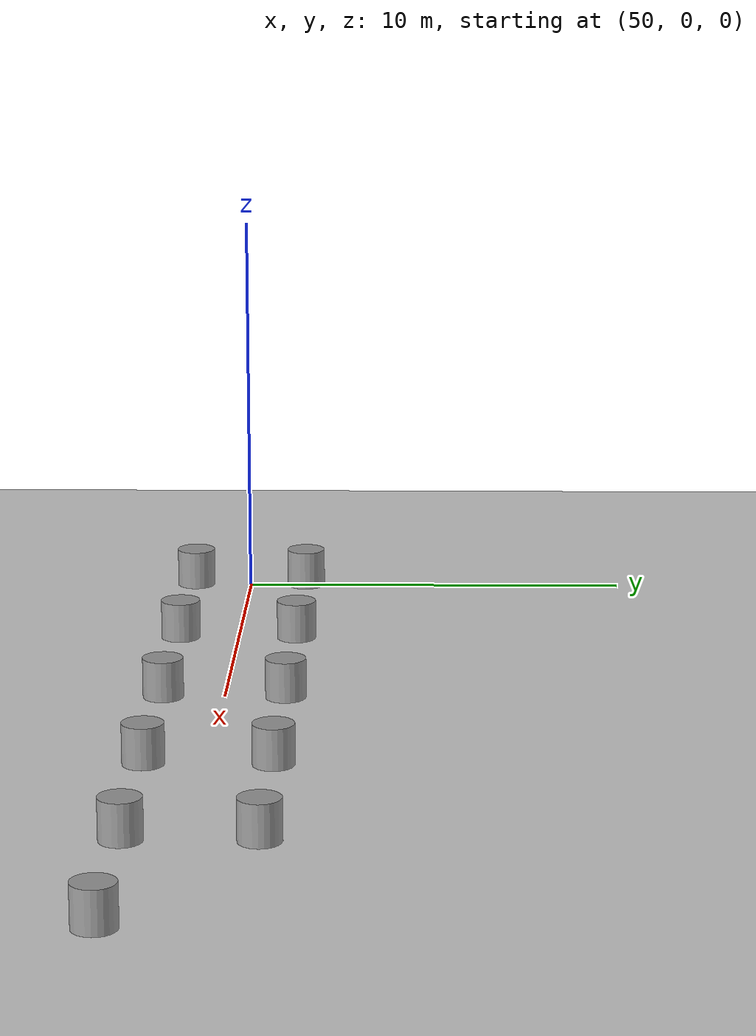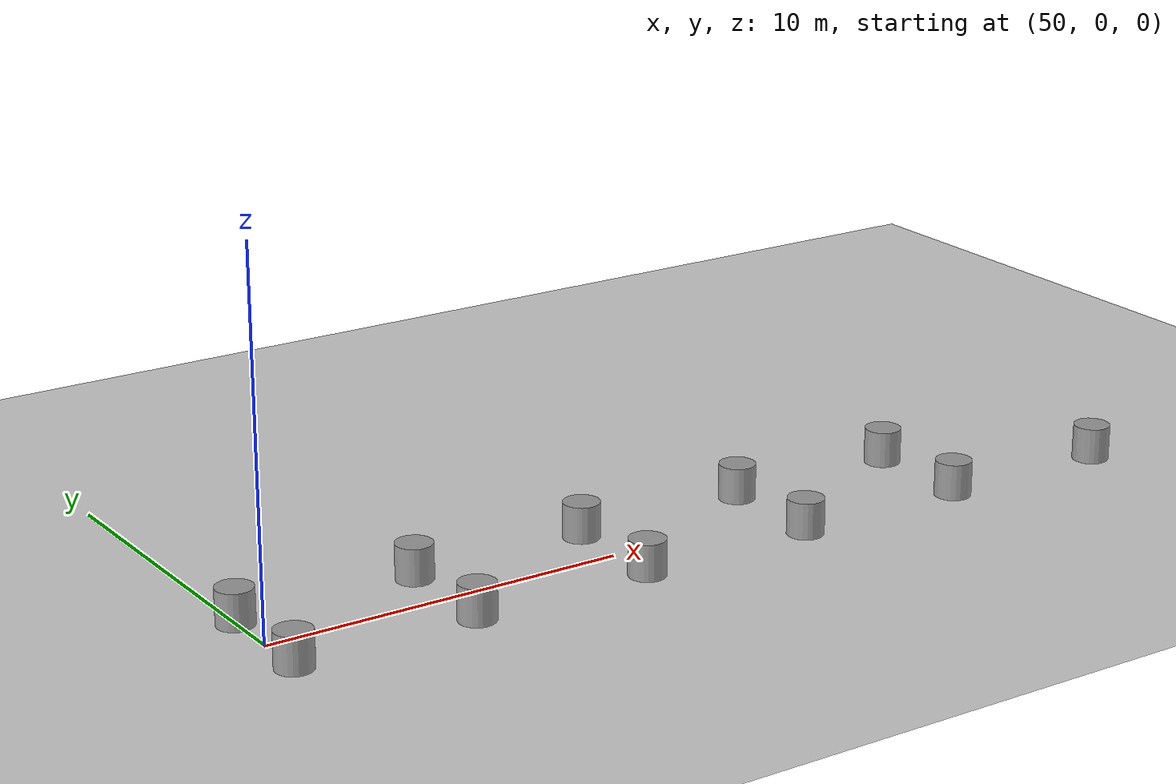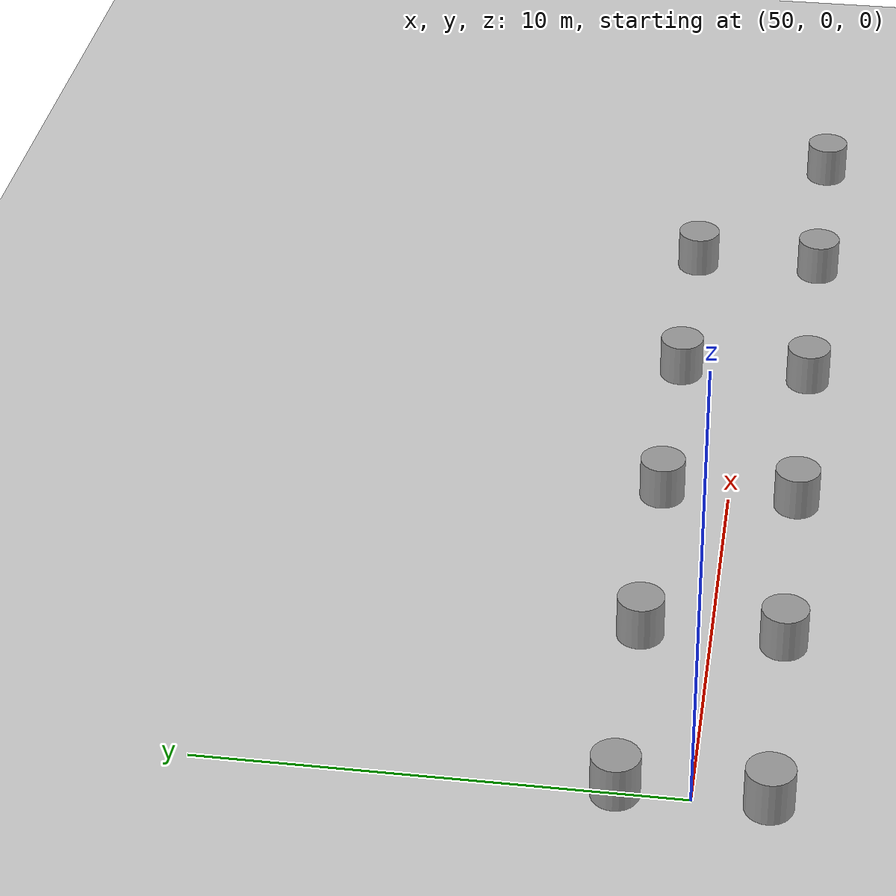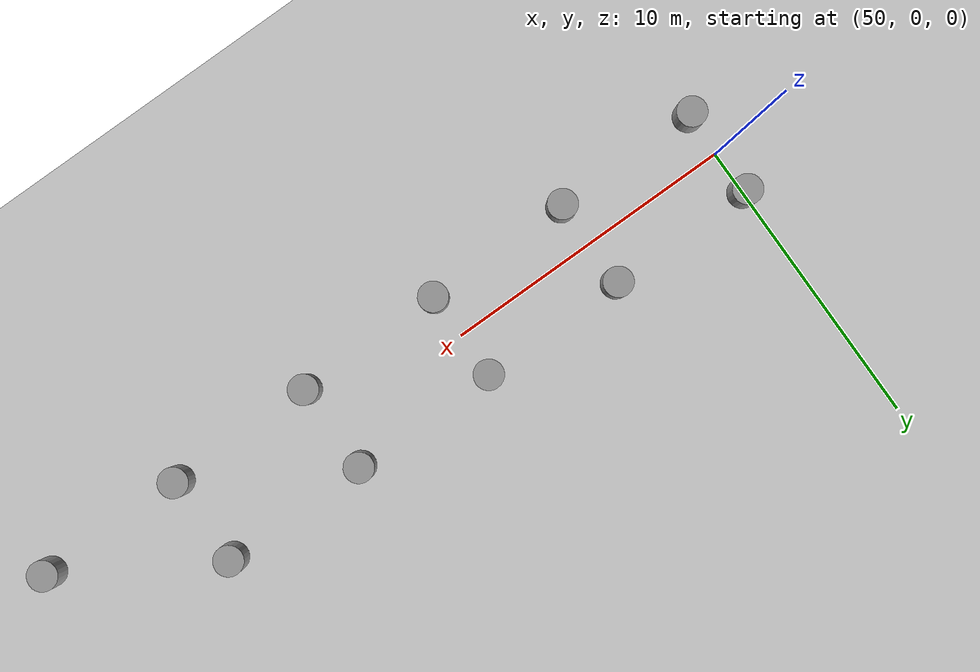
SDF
<sdf version="1.7">
 <world name="default">
  <model name="ground_plane">
   <static>1</static>
   <link name="link">
    <collision name="collision">
     <geometry><plane><normal>0 0 1</normal><size>100 100</size></plane></geometry>
     <surface>
      <contact><collide_bitmask>65535</collide_bitmask></contact>
      <friction><ode><mu>100</mu><mu2>50</mu2></ode></friction>
     </surface>
    </collision>
    <visual name="visual">
     <cast_shadows>0</cast_shadows>
     <geometry><plane><normal>0 0 1</normal><size>100 100</size></plane></geometry>
     <material>
      <script><uri>file://media/materials/scripts/gazebo.material</uri><name>Gazebo/Grey</name></script>
     </material>
    </visual>
   </link>
  </model>
  <model name="unit_cylinder_clone_5">
   <pose>50 -1.5 0.499997 3e-06 -0 0</pose>
   <link name="link">
    <inertial>
     <mass>1</mass>
     <inertia><ixx>0.145833</ixx><ixy>0</ixy><ixz>0</ixz><iyy>0.145833</iyy><iyz>0</iyz><izz>0.125</izz></inertia>
    </inertial>
    <collision name="collision">
     <geometry><cylinder><radius>0.5</radius><length>1</length></cylinder></geometry>
    </collision>
    <visual name="visual">
     <geometry><cylinder><radius>0.5</radius><length>1</length></cylinder></geometry>
     <material>
      <script><name>Gazebo/Grey</name><uri>file://media/materials/scripts/gazebo.material</uri></script>
     </material>
    </visual>
   </link>
  </model>
  <model name="unit_cylinder_clone_6">
   <pose>55 -1.5 0.49999 0 -0 0</pose>
   <link name="link">
    <inertial>
     <mass>1</mass>
     <inertia><ixx>0.145833</ixx><ixy>0</ixy><ixz>0</ixz><iyy>0.145833</iyy><iyz>0</iyz><izz>0.125</izz></inertia>
    </inertial>
    <collision name="collision">
     <geometry><cylinder><radius>0.5</radius><length>1</length></cylinder></geometry>
    </collision>
    <visual name="visual">
     <geometry><cylinder><radius>0.5</radius><length>1</length></cylinder></geometry>
     <material>
      <script><name>Gazebo/Grey</name><uri>file://media/materials/scripts/gazebo.material</uri></script>
     </material>
    </visual>
   </link>
  </model>
  <model name="unit_cylinder_clone_7">
   <pose>60 -1.5 0.49999 0 -0 0</pose>
   <link name="link">
    <inertial>
     <mass>1</mass>
     <inertia><ixx>0.145833</ixx><ixy>0</ixy><ixz>0</ixz><iyy>0.145833</iyy><iyz>0</iyz><izz>0.125</izz></inertia>
    </inertial>
    <collision name="collision">
     <geometry><cylinder><radius>0.5</radius><length>1</length></cylinder></geometry>
    </collision>
    <visual name="visual">
     <geometry><cylinder><radius>0.5</radius><length>1</length></cylinder></geometry>
     <material>
      <script><name>Gazebo/Grey</name><uri>file://media/materials/scripts/gazebo.material</uri></script>
     </material>
    </visual>
   </link>
  </model>
  <model name="unit_cylinder_clone_11">
   <pose>65 -1.5 0.499994 -3e-06 -0 -0</pose>
   <link name="link">
    <inertial>
     <mass>1</mass>
     <inertia><ixx>0.145833</ixx><ixy>0</ixy><ixz>0</ixz><iyy>0.145833</iyy><iyz>0</iyz><izz>0.125</izz></inertia>
    </inertial>
    <collision name="collision">
     <geometry><cylinder><radius>0.5</radius><length>1</length></cylinder></geometry>
    </collision>
    <visual name="visual">
     <geometry><cylinder><radius>0.5</radius><length>1</length></cylinder></geometry>
     <material>
      <script><name>Gazebo/Grey</name><uri>file://media/materials/scripts/gazebo.material</uri></script>
     </material>
    </visual>
   </link>
  </model>
  <model name="unit_cylinder_clone_12">
   <pose>70 -1.5 0.499991 0 -0 0</pose>
   <link name="link">
    <inertial>
     <mass>1</mass>
     <inertia><ixx>0.145833</ixx><ixy>0</ixy><ixz>0</ixz><iyy>0.145833</iyy><iyz>0</iyz><izz>0.125</izz></inertia>
    </inertial>
    <collision name="collision">
     <geometry><cylinder><radius>0.5</radius><length>1</length></cylinder></geometry>
    </collision>
    <visual name="visual">
     <geometry><cylinder><radius>0.5</radius><length>1</length></cylinder></geometry>
     <material>
      <script><name>Gazebo/Grey</name><uri>file://media/materials/scripts/gazebo.material</uri></script>
     </material>
    </visual>
   </link>
  </model>
  <model name="unit_cylinder_clone_13">
   <pose>75 -1.5 0.499994 -3e-06 -1e-06 -0</pose>
   <link name="link">
    <inertial>
     <mass>1</mass>
     <inertia><ixx>0.145833</ixx><ixy>0</ixy><ixz>0</ixz><iyy>0.145833</iyy><iyz>0</iyz><izz>0.125</izz></inertia>
    </inertial>
    <collision name="collision">
     <geometry><cylinder><radius>0.5</radius><length>1</length></cylinder></geometry>
    </collision>
    <visual name="visual">
     <geometry><cylinder><radius>0.5</radius><length>1</length></cylinder></geometry>
     <material>
      <script><name>Gazebo/Grey</name><uri>file://media/materials/scripts/gazebo.material</uri></script>
     </material>
    </visual>
   </link>
  </model>
  <model name="unit_cylinder_clone_26">
   <pose>50 1.5 0.5 0 -0 0</pose>
   <link name="link">
    <inertial>
     <mass>1</mass>
     <inertia><ixx>0.145833</ixx><ixy>0</ixy><ixz>0</ixz><iyy>0.145833</iyy><iyz>0</iyz><izz>0.125</izz></inertia>
    </inertial>
    <collision name="collision">
     <geometry><cylinder><radius>0.5</radius><length>1</length></cylinder></geometry>
    </collision>
    <visual name="visual">
     <geometry><cylinder><radius>0.5</radius><length>1</length></cylinder></geometry>
     <material>
      <script><name>Gazebo/Grey</name><uri>file://media/materials/scripts/gazebo.material</uri></script>
     </material>
    </visual>
   </link>
  </model>
  <model name="unit_cylinder_clone_27">
   <pose>55 1.5 0.499998 3e-06 -2e-06 0</pose>
   <link name="link">
    <inertial>
     <mass>1</mass>
     <inertia><ixx>0.145833</ixx><ixy>0</ixy><ixz>0</ixz><iyy>0.145833</iyy><iyz>0</iyz><izz>0.125</izz></inertia>
    </inertial>
    <collision name="collision">
     <geometry><cylinder><radius>0.5</radius><length>1</length></cylinder></geometry>
    </collision>
    <visual name="visual">
     <geometry><cylinder><radius>0.5</radius><length>1</length></cylinder></geometry>
     <material>
      <script><name>Gazebo/Grey</name><uri>file://media/materials/scripts/gazebo.material</uri></script>
     </material>
    </visual>
   </link>
  </model>
  <model name="unit_cylinder_clone_28">
   <pose>65 1.5 0.499993 -3e-06 2e-06 0</pose>
   <link name="link">
    <inertial>
     <mass>1</mass>
     <inertia><ixx>0.145833</ixx><ixy>0</ixy><ixz>0</ixz><iyy>0.145833</iyy><iyz>0</iyz><izz>0.125</izz></inertia>
    </inertial>
    <collision name="collision">
     <geometry><cylinder><radius>0.5</radius><length>1</length></cylinder></geometry>
    </collision>
    <visual name="visual">
     <geometry><cylinder><radius>0.5</radius><length>1</length></cylinder></geometry>
     <material>
      <script><name>Gazebo/Grey</name><uri>file://media/materials/scripts/gazebo.material</uri></script>
     </material>
    </visual>
   </link>
  </model>
  <model name="unit_cylinder_clone_32">
   <pose>60 1.5 0.5 0 -0 0</pose>
   <link name="link">
    <inertial>
     <mass>1</mass>
     <inertia><ixx>0.145833</ixx><ixy>0</ixy><ixz>0</ixz><iyy>0.145833</iyy><iyz>0</iyz><izz>0.125</izz></inertia>
    </inertial>
    <collision name="collision">
     <geometry><cylinder><radius>0.5</radius><length>1</length></cylinder></geometry>
    </collision>
    <visual name="visual">
     <geometry><cylinder><radius>0.5</radius><length>1</length></cylinder></geometry>
     <material>
      <script><name>Gazebo/Grey</name><uri>file://media/materials/scripts/gazebo.material</uri></script>
     </material>
    </visual>
   </link>
  </model>
  <model name="unit_cylinder_clone_33">
   <pose>70 1.5 0.499997 3e-06 -2e-06 0</pose>
   <link name="link">
    <inertial>
     <mass>1</mass>
     <inertia><ixx>0.145833</ixx><ixy>0</ixy><ixz>0</ixz><iyy>0.145833</iyy><iyz>0</iyz><izz>0.125</izz></inertia>
    </inertial>
    <collision name="collision">
     <geometry><cylinder><radius>0.5</radius><length>1</length></cylinder></geometry>
    </collision>
    <visual name="visual">
     <geometry><cylinder><radius>0.5</radius><length>1</length></cylinder></geometry>
     <material>
      <script><name>Gazebo/Grey</name><uri>file://media/materials/scripts/gazebo.material</uri></script>
     </material>
    </visual>
   </link>
  </model>
 </world>
</sdf>
